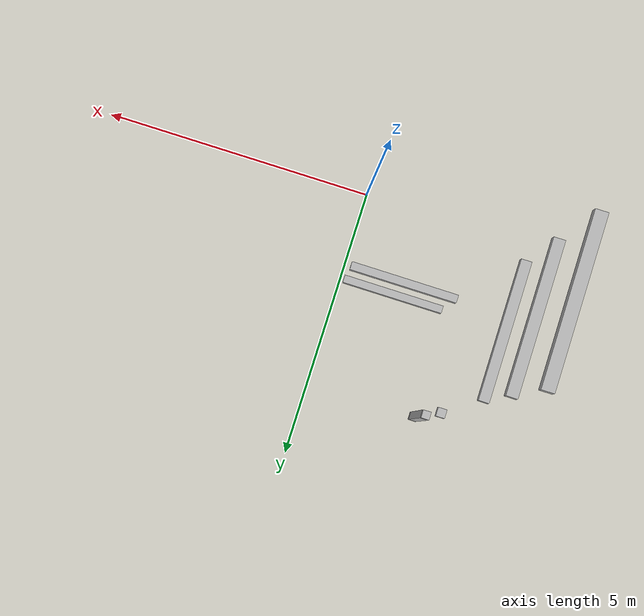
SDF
<sdf version="1.7">
 <world name="default">
  <model name="orthogonal_747_2.000.15_TS">
   <static>1</static>
   <link name="x_link_0_3_2">
    <inertial>
     <mass>1</mass>
     <inertia>
      <ixx>0.166667</ixx>
      <ixy>0</ixy>
      <ixz>0</ixz>
      <iyy>0.166667</iyy>
      <iyz>0</iyz>
      <izz>0.166667</izz>
     </inertia>
    </inertial>
    <pose>5.375 6.45 1.075 0 -0 0</pose>
    <visual name="visual_0">
     <laser_retro>526</laser_retro>
     <geometry><box><size>2 1e-06 0.15</size></box></geometry>
     <material>
      <script><name>Gazebo/Grey</name><uri>file://media/materials/scripts/gazebo.material</uri></script>
      <shader type="pixel"><normal_map>__default__</normal_map></shader>
      <ambient>0.678 0.498 0.659 1</ambient>
      <diffuse>0.7 0.7 0.7 1</diffuse>
      <specular>0.01 0.01 0.01 1</specular>
      <emissive>0 0 0 1</emissive>
     </material>
     <pose>0 -0.075 0 0 -0 0</pose>
     <transparency>1</transparency>
    </visual>
    <visual name="visual_1">
     <laser_retro>527</laser_retro>
     <geometry><box><size>2 1e-06 0.15</size></box></geometry>
     <material>
      <script><name>Gazebo/Grey</name><uri>file://media/materials/scripts/gazebo.material</uri></script>
      <shader type="pixel"><normal_map>__default__</normal_map></shader>
      <ambient>0.447 0.624 0.812 1</ambient>
      <diffuse>0.7 0.7 0.7 1</diffuse>
      <specular>0.01 0.01 0.01 1</specular>
      <emissive>0 0 0 1</emissive>
     </material>
     <pose>0 0.075 0 0 -0 0</pose>
     <transparency>1</transparency>
    </visual>
    <visual name="visual_2">
     <laser_retro>528</laser_retro>
     <geometry><box><size>2 0.15 1e-06</size></box></geometry>
     <material>
      <script><name>Gazebo/Grey</name><uri>file://media/materials/scripts/gazebo.material</uri></script>
      <shader type="pixel"><normal_map>__default__</normal_map></shader>
      <ambient>0.988 0.686 0.243 1</ambient>
      <diffuse>0.7 0.7 0.7 1</diffuse>
      <specular>0.01 0.01 0.01 1</specular>
      <emissive>0 0 0 1</emissive>
     </material>
     <pose>0 0 -0.075 0 -0 0</pose>
     <transparency>1</transparency>
    </visual>
    <visual name="visual_3">
     <laser_retro>529</laser_retro>
     <geometry><box><size>1e-06 0.15 0.15</size></box></geometry>
     <material>
      <script><name>Gazebo/Grey</name><uri>file://media/materials/scripts/gazebo.material</uri></script>
      <shader type="pixel"><normal_map>__default__</normal_map></shader>
      <ambient>0.988 0.914 0.31 1</ambient>
      <diffuse>0.7 0.7 0.7 1</diffuse>
      <specular>0.01 0.01 0.01 1</specular>
      <emissive>0 0 0 1</emissive>
     </material>
     <pose>1 0 0 0 -0 0</pose>
     <transparency>1</transparency>
    </visual>
    <visual name="visual_4">
     <laser_retro>530</laser_retro>
     <geometry><box><size>2 0.15 1e-06</size></box></geometry>
     <material>
      <script><name>Gazebo/Grey</name><uri>file://media/materials/scripts/gazebo.material</uri></script>
      <shader type="pixel"><normal_map>__default__</normal_map></shader>
      <ambient>0.937 0.161 0.161 1</ambient>
      <diffuse>0.7 0.7 0.7 1</diffuse>
      <specular>0.01 0.01 0.01 1</specular>
      <emissive>0 0 0 1</emissive>
     </material>
     <pose>0 0 0.075 0 -0 0</pose>
     <transparency>1</transparency>
    </visual>
    <visual name="visual_5">
     <laser_retro>531</laser_retro>
     <geometry><box><size>1e-06 0.15 0.15</size></box></geometry>
     <material>
      <script><name>Gazebo/Grey</name><uri>file://media/materials/scripts/gazebo.material</uri></script>
      <shader type="pixel"><normal_map>__default__</normal_map></shader>
      <ambient>0.541 0.886 0.204 1</ambient>
      <diffuse>0.7 0.7 0.7 1</diffuse>
      <specular>0.01 0.01 0.01 1</specular>
      <emissive>0 0 0 1</emissive>
     </material>
     <pose>-1 0 0 0 -0 0</pose>
     <transparency>1</transparency>
    </visual>
    <visual name="visual_texture">
     <geometry><box><size>1.9998 0.149985 0.149985</size></box></geometry>
     <material>
      <script>
       <uri>model://BASE_MODELS/simple_block_v2_textured/materials/scripts</uri>
       <uri>model://BASE_MODELS/simple_block_v2_textured/materials/textures</uri>
       <name>metal</name>
      </script>
     </material>
     <laser_retro>532</laser_retro>
    </visual>
    <collision name="collision">
     <geometry><box><size>2 0.15 0.15</size></box></geometry>
     <surface>
      <friction>
       <ode><mu>1</mu><mu2>1</mu2><fdir1>0 0 0</fdir1><slip1>0</slip1><slip2>0</slip2></ode>
       <torsional>
        <coefficient>1</coefficient>
        <patch_radius>0</patch_radius>
        <surface_radius>0</surface_radius>
        <use_patch_radius>1</use_patch_radius>
        <ode><slip>0</slip></ode>
       </torsional>
      </friction>
      <bounce><restitution_coefficient>0</restitution_coefficient><threshold>1e+06</threshold></bounce>
      <contact>
       <collide_without_contact>0</collide_without_contact>
       <collide_without_contact_bitmask>1</collide_without_contact_bitmask>
       <collide_bitmask>1</collide_bitmask>
       <ode>
        <soft_cfm>0</soft_cfm>
        <soft_erp>0.2</soft_erp>
        <kp>1e+13</kp>
        <kd>1</kd>
        <max_vel>0.01</max_vel>
        <min_depth>0</min_depth>
       </ode>
       <bullet>
        <split_impulse>1</split_impulse>
        <split_impulse_penetration_threshold>-0.01</split_impulse_penetration_threshold>
        <soft_cfm>0</soft_cfm>
        <soft_erp>0.2</soft_erp>
        <kp>1e+13</kp>
        <kd>1</kd>
       </bullet>
      </contact>
     </surface>
    </collision>
   </link>
   <link name="u_link_0_4_2">
    <inertial>
     <mass>1</mass>
     <inertia>
      <ixx>0.166667</ixx>
      <ixy>0</ixy>
      <ixz>0</ixz>
      <iyy>0.166667</iyy>
      <iyz>0</iyz>
      <izz>0.166667</izz>
     </inertia>
    </inertial>
    <pose>4.3 8.6 1.075 0 -0 0</pose>
    <visual name="visual_0">
     <laser_retro>680</laser_retro>
     <geometry><box><size>0.15 1e-06 0.15</size></box></geometry>
     <material>
      <script><name>Gazebo/Grey</name><uri>file://media/materials/scripts/gazebo.material</uri></script>
      <shader type="pixel"><normal_map>__default__</normal_map></shader>
      <ambient>0.678 0.498 0.659 1</ambient>
      <diffuse>0.7 0.7 0.7 1</diffuse>
      <specular>0.01 0.01 0.01 1</specular>
      <emissive>0 0 0 1</emissive>
     </material>
     <pose>0 -0.075 0 0 -0 0</pose>
     <transparency>1</transparency>
    </visual>
    <visual name="visual_1">
     <laser_retro>681</laser_retro>
     <geometry><box><size>0.15 1e-06 0.15</size></box></geometry>
     <material>
      <script><name>Gazebo/Grey</name><uri>file://media/materials/scripts/gazebo.material</uri></script>
      <shader type="pixel"><normal_map>__default__</normal_map></shader>
      <ambient>0.447 0.624 0.812 1</ambient>
      <diffuse>0.7 0.7 0.7 1</diffuse>
      <specular>0.01 0.01 0.01 1</specular>
      <emissive>0 0 0 1</emissive>
     </material>
     <pose>0 0.075 0 0 -0 0</pose>
     <transparency>1</transparency>
    </visual>
    <visual name="visual_2">
     <laser_retro>682</laser_retro>
     <geometry><box><size>0.15 0.15 1e-06</size></box></geometry>
     <material>
      <script><name>Gazebo/Grey</name><uri>file://media/materials/scripts/gazebo.material</uri></script>
      <shader type="pixel"><normal_map>__default__</normal_map></shader>
      <ambient>0.988 0.686 0.243 1</ambient>
      <diffuse>0.7 0.7 0.7 1</diffuse>
      <specular>0.01 0.01 0.01 1</specular>
      <emissive>0 0 0 1</emissive>
     </material>
     <pose>0 0 -0.075 0 -0 0</pose>
     <transparency>1</transparency>
    </visual>
    <visual name="visual_3">
     <laser_retro>683</laser_retro>
     <geometry><box><size>1e-06 0.15 0.15</size></box></geometry>
     <material>
      <script><name>Gazebo/Grey</name><uri>file://media/materials/scripts/gazebo.material</uri></script>
      <shader type="pixel"><normal_map>__default__</normal_map></shader>
      <ambient>0.988 0.914 0.31 1</ambient>
      <diffuse>0.7 0.7 0.7 1</diffuse>
      <specular>0.01 0.01 0.01 1</specular>
      <emissive>0 0 0 1</emissive>
     </material>
     <pose>0.075 0 0 0 -0 0</pose>
     <transparency>1</transparency>
    </visual>
    <visual name="visual_4">
     <laser_retro>684</laser_retro>
     <geometry><box><size>0.15 0.15 1e-06</size></box></geometry>
     <material>
      <script><name>Gazebo/Grey</name><uri>file://media/materials/scripts/gazebo.material</uri></script>
      <shader type="pixel"><normal_map>__default__</normal_map></shader>
      <ambient>0.937 0.161 0.161 1</ambient>
      <diffuse>0.7 0.7 0.7 1</diffuse>
      <specular>0.01 0.01 0.01 1</specular>
      <emissive>0 0 0 1</emissive>
     </material>
     <pose>0 0 0.075 0 -0 0</pose>
     <transparency>1</transparency>
    </visual>
    <visual name="visual_5">
     <laser_retro>685</laser_retro>
     <geometry><box><size>1e-06 0.15 0.15</size></box></geometry>
     <material>
      <script><name>Gazebo/Grey</name><uri>file://media/materials/scripts/gazebo.material</uri></script>
      <shader type="pixel"><normal_map>__default__</normal_map></shader>
      <ambient>0.541 0.886 0.204 1</ambient>
      <diffuse>0.7 0.7 0.7 1</diffuse>
      <specular>0.01 0.01 0.01 1</specular>
      <emissive>0 0 0 1</emissive>
     </material>
     <pose>-0.075 0 0 0 -0 0</pose>
     <transparency>1</transparency>
    </visual>
    <visual name="visual_texture">
     <geometry><box><size>0.149985 0.149985 0.149985</size></box></geometry>
     <material>
      <script>
       <uri>model://BASE_MODELS/simple_block_v2_textured/materials/scripts</uri>
       <uri>model://BASE_MODELS/simple_block_v2_textured/materials/textures</uri>
       <name>metal</name>
      </script>
     </material>
     <laser_retro>686</laser_retro>
    </visual>
    <collision name="collision">
     <geometry><box><size>0.15 0.15 0.15</size></box></geometry>
     <surface>
      <friction>
       <ode><mu>1</mu><mu2>1</mu2><fdir1>0 0 0</fdir1><slip1>0</slip1><slip2>0</slip2></ode>
       <torsional>
        <coefficient>1</coefficient>
        <patch_radius>0</patch_radius>
        <surface_radius>0</surface_radius>
        <use_patch_radius>1</use_patch_radius>
        <ode><slip>0</slip></ode>
       </torsional>
      </friction>
      <bounce><restitution_coefficient>0</restitution_coefficient><threshold>1e+06</threshold></bounce>
      <contact>
       <collide_without_contact>0</collide_without_contact>
       <collide_without_contact_bitmask>1</collide_without_contact_bitmask>
       <collide_bitmask>1</collide_bitmask>
       <ode>
        <soft_cfm>0</soft_cfm>
        <soft_erp>0.2</soft_erp>
        <kp>1e+13</kp>
        <kd>1</kd>
        <max_vel>0.01</max_vel>
        <min_depth>0</min_depth>
       </ode>
       <bullet>
        <split_impulse>1</split_impulse>
        <split_impulse_penetration_threshold>-0.01</split_impulse_penetration_threshold>
        <soft_cfm>0</soft_cfm>
        <soft_erp>0.2</soft_erp>
        <kp>1e+13</kp>
        <kd>1</kd>
       </bullet>
      </contact>
     </surface>
    </collision>
   </link>
   <link name="x_link_1_3_2">
    <inertial>
     <mass>1</mass>
     <inertia>
      <ixx>0.166667</ixx>
      <ixy>0</ixy>
      <ixz>0</ixz>
      <iyy>0.166667</iyy>
      <iyz>0</iyz>
      <izz>0.166667</izz>
     </inertia>
    </inertial>
    <pose>5.375 6.45 3.225 0 -0 0</pose>
    <visual name="visual_0">
     <laser_retro>1366</laser_retro>
     <geometry><box><size>2 1e-06 0.15</size></box></geometry>
     <material>
      <script><name>Gazebo/Grey</name><uri>file://media/materials/scripts/gazebo.material</uri></script>
      <shader type="pixel"><normal_map>__default__</normal_map></shader>
      <ambient>0.678 0.498 0.659 1</ambient>
      <diffuse>0.7 0.7 0.7 1</diffuse>
      <specular>0.01 0.01 0.01 1</specular>
      <emissive>0 0 0 1</emissive>
     </material>
     <pose>0 -0.075 0 0 -0 0</pose>
     <transparency>1</transparency>
    </visual>
    <visual name="visual_1">
     <laser_retro>1367</laser_retro>
     <geometry><box><size>2 1e-06 0.15</size></box></geometry>
     <material>
      <script><name>Gazebo/Grey</name><uri>file://media/materials/scripts/gazebo.material</uri></script>
      <shader type="pixel"><normal_map>__default__</normal_map></shader>
      <ambient>0.447 0.624 0.812 1</ambient>
      <diffuse>0.7 0.7 0.7 1</diffuse>
      <specular>0.01 0.01 0.01 1</specular>
      <emissive>0 0 0 1</emissive>
     </material>
     <pose>0 0.075 0 0 -0 0</pose>
     <transparency>1</transparency>
    </visual>
    <visual name="visual_2">
     <laser_retro>1368</laser_retro>
     <geometry><box><size>2 0.15 1e-06</size></box></geometry>
     <material>
      <script><name>Gazebo/Grey</name><uri>file://media/materials/scripts/gazebo.material</uri></script>
      <shader type="pixel"><normal_map>__default__</normal_map></shader>
      <ambient>0.988 0.686 0.243 1</ambient>
      <diffuse>0.7 0.7 0.7 1</diffuse>
      <specular>0.01 0.01 0.01 1</specular>
      <emissive>0 0 0 1</emissive>
     </material>
     <pose>0 0 -0.075 0 -0 0</pose>
     <transparency>1</transparency>
    </visual>
    <visual name="visual_3">
     <laser_retro>1369</laser_retro>
     <geometry><box><size>1e-06 0.15 0.15</size></box></geometry>
     <material>
      <script><name>Gazebo/Grey</name><uri>file://media/materials/scripts/gazebo.material</uri></script>
      <shader type="pixel"><normal_map>__default__</normal_map></shader>
      <ambient>0.988 0.914 0.31 1</ambient>
      <diffuse>0.7 0.7 0.7 1</diffuse>
      <specular>0.01 0.01 0.01 1</specular>
      <emissive>0 0 0 1</emissive>
     </material>
     <pose>1 0 0 0 -0 0</pose>
     <transparency>1</transparency>
    </visual>
    <visual name="visual_4">
     <laser_retro>1370</laser_retro>
     <geometry><box><size>2 0.15 1e-06</size></box></geometry>
     <material>
      <script><name>Gazebo/Grey</name><uri>file://media/materials/scripts/gazebo.material</uri></script>
      <shader type="pixel"><normal_map>__default__</normal_map></shader>
      <ambient>0.937 0.161 0.161 1</ambient>
      <diffuse>0.7 0.7 0.7 1</diffuse>
      <specular>0.01 0.01 0.01 1</specular>
      <emissive>0 0 0 1</emissive>
     </material>
     <pose>0 0 0.075 0 -0 0</pose>
     <transparency>1</transparency>
    </visual>
    <visual name="visual_5">
     <laser_retro>1371</laser_retro>
     <geometry><box><size>1e-06 0.15 0.15</size></box></geometry>
     <material>
      <script><name>Gazebo/Grey</name><uri>file://media/materials/scripts/gazebo.material</uri></script>
      <shader type="pixel"><normal_map>__default__</normal_map></shader>
      <ambient>0.541 0.886 0.204 1</ambient>
      <diffuse>0.7 0.7 0.7 1</diffuse>
      <specular>0.01 0.01 0.01 1</specular>
      <emissive>0 0 0 1</emissive>
     </material>
     <pose>-1 0 0 0 -0 0</pose>
     <transparency>1</transparency>
    </visual>
    <visual name="visual_texture">
     <geometry><box><size>1.9998 0.149985 0.149985</size></box></geometry>
     <material>
      <script>
       <uri>model://BASE_MODELS/simple_block_v2_textured/materials/scripts</uri>
       <uri>model://BASE_MODELS/simple_block_v2_textured/materials/textures</uri>
       <name>metal</name>
      </script>
     </material>
     <laser_retro>1372</laser_retro>
    </visual>
    <collision name="collision">
     <geometry><box><size>2 0.15 0.15</size></box></geometry>
     <surface>
      <friction>
       <ode><mu>1</mu><mu2>1</mu2><fdir1>0 0 0</fdir1><slip1>0</slip1><slip2>0</slip2></ode>
       <torsional>
        <coefficient>1</coefficient>
        <patch_radius>0</patch_radius>
        <surface_radius>0</surface_radius>
        <use_patch_radius>1</use_patch_radius>
        <ode><slip>0</slip></ode>
       </torsional>
      </friction>
      <bounce><restitution_coefficient>0</restitution_coefficient><threshold>1e+06</threshold></bounce>
      <contact>
       <collide_without_contact>0</collide_without_contact>
       <collide_without_contact_bitmask>1</collide_without_contact_bitmask>
       <collide_bitmask>1</collide_bitmask>
       <ode>
        <soft_cfm>0</soft_cfm>
        <soft_erp>0.2</soft_erp>
        <kp>1e+13</kp>
        <kd>1</kd>
        <max_vel>0.01</max_vel>
        <min_depth>0</min_depth>
       </ode>
       <bullet>
        <split_impulse>1</split_impulse>
        <split_impulse_penetration_threshold>-0.01</split_impulse_penetration_threshold>
        <soft_cfm>0</soft_cfm>
        <soft_erp>0.2</soft_erp>
        <kp>1e+13</kp>
        <kd>1</kd>
       </bullet>
      </contact>
     </surface>
    </collision>
   </link>
   <link name="u_link_1_4_2">
    <inertial>
     <mass>1</mass>
     <inertia>
      <ixx>0.166667</ixx>
      <ixy>0</ixy>
      <ixz>0</ixz>
      <iyy>0.166667</iyy>
      <iyz>0</iyz>
      <izz>0.166667</izz>
     </inertia>
    </inertial>
    <pose>4.3 8.6 3.225 0 -0 0</pose>
    <visual name="visual_0">
     <laser_retro>1541</laser_retro>
     <geometry><box><size>0.15 1e-06 0.15</size></box></geometry>
     <material>
      <script><name>Gazebo/Grey</name><uri>file://media/materials/scripts/gazebo.material</uri></script>
      <shader type="pixel"><normal_map>__default__</normal_map></shader>
      <ambient>0.678 0.498 0.659 1</ambient>
      <diffuse>0.7 0.7 0.7 1</diffuse>
      <specular>0.01 0.01 0.01 1</specular>
      <emissive>0 0 0 1</emissive>
     </material>
     <pose>0 -0.075 0 0 -0 0</pose>
     <transparency>1</transparency>
    </visual>
    <visual name="visual_1">
     <laser_retro>1542</laser_retro>
     <geometry><box><size>0.15 1e-06 0.15</size></box></geometry>
     <material>
      <script><name>Gazebo/Grey</name><uri>file://media/materials/scripts/gazebo.material</uri></script>
      <shader type="pixel"><normal_map>__default__</normal_map></shader>
      <ambient>0.447 0.624 0.812 1</ambient>
      <diffuse>0.7 0.7 0.7 1</diffuse>
      <specular>0.01 0.01 0.01 1</specular>
      <emissive>0 0 0 1</emissive>
     </material>
     <pose>0 0.075 0 0 -0 0</pose>
     <transparency>1</transparency>
    </visual>
    <visual name="visual_2">
     <laser_retro>1543</laser_retro>
     <geometry><box><size>0.15 0.15 1e-06</size></box></geometry>
     <material>
      <script><name>Gazebo/Grey</name><uri>file://media/materials/scripts/gazebo.material</uri></script>
      <shader type="pixel"><normal_map>__default__</normal_map></shader>
      <ambient>0.988 0.686 0.243 1</ambient>
      <diffuse>0.7 0.7 0.7 1</diffuse>
      <specular>0.01 0.01 0.01 1</specular>
      <emissive>0 0 0 1</emissive>
     </material>
     <pose>0 0 -0.075 0 -0 0</pose>
     <transparency>1</transparency>
    </visual>
    <visual name="visual_3">
     <laser_retro>1544</laser_retro>
     <geometry><box><size>1e-06 0.15 0.15</size></box></geometry>
     <material>
      <script><name>Gazebo/Grey</name><uri>file://media/materials/scripts/gazebo.material</uri></script>
      <shader type="pixel"><normal_map>__default__</normal_map></shader>
      <ambient>0.988 0.914 0.31 1</ambient>
      <diffuse>0.7 0.7 0.7 1</diffuse>
      <specular>0.01 0.01 0.01 1</specular>
      <emissive>0 0 0 1</emissive>
     </material>
     <pose>0.075 0 0 0 -0 0</pose>
     <transparency>1</transparency>
    </visual>
    <visual name="visual_4">
     <laser_retro>1545</laser_retro>
     <geometry><box><size>0.15 0.15 1e-06</size></box></geometry>
     <material>
      <script><name>Gazebo/Grey</name><uri>file://media/materials/scripts/gazebo.material</uri></script>
      <shader type="pixel"><normal_map>__default__</normal_map></shader>
      <ambient>0.937 0.161 0.161 1</ambient>
      <diffuse>0.7 0.7 0.7 1</diffuse>
      <specular>0.01 0.01 0.01 1</specular>
      <emissive>0 0 0 1</emissive>
     </material>
     <pose>0 0 0.075 0 -0 0</pose>
     <transparency>1</transparency>
    </visual>
    <visual name="visual_5">
     <laser_retro>1546</laser_retro>
     <geometry><box><size>1e-06 0.15 0.15</size></box></geometry>
     <material>
      <script><name>Gazebo/Grey</name><uri>file://media/materials/scripts/gazebo.material</uri></script>
      <shader type="pixel"><normal_map>__default__</normal_map></shader>
      <ambient>0.541 0.886 0.204 1</ambient>
      <diffuse>0.7 0.7 0.7 1</diffuse>
      <specular>0.01 0.01 0.01 1</specular>
      <emissive>0 0 0 1</emissive>
     </material>
     <pose>-0.075 0 0 0 -0 0</pose>
     <transparency>1</transparency>
    </visual>
    <visual name="visual_texture">
     <geometry><box><size>0.149985 0.149985 0.149985</size></box></geometry>
     <material>
      <script>
       <uri>model://BASE_MODELS/simple_block_v2_textured/materials/scripts</uri>
       <uri>model://BASE_MODELS/simple_block_v2_textured/materials/textures</uri>
       <name>metal</name>
      </script>
     </material>
     <laser_retro>1547</laser_retro>
    </visual>
    <collision name="collision">
     <geometry><box><size>0.15 0.15 0.15</size></box></geometry>
     <surface>
      <friction>
       <ode><mu>1</mu><mu2>1</mu2><fdir1>0 0 0</fdir1><slip1>0</slip1><slip2>0</slip2></ode>
       <torsional>
        <coefficient>1</coefficient>
        <patch_radius>0</patch_radius>
        <surface_radius>0</surface_radius>
        <use_patch_radius>1</use_patch_radius>
        <ode><slip>0</slip></ode>
       </torsional>
      </friction>
      <bounce><restitution_coefficient>0</restitution_coefficient><threshold>1e+06</threshold></bounce>
      <contact>
       <collide_without_contact>0</collide_without_contact>
       <collide_without_contact_bitmask>1</collide_without_contact_bitmask>
       <collide_bitmask>1</collide_bitmask>
       <ode>
        <soft_cfm>0</soft_cfm>
        <soft_erp>0.2</soft_erp>
        <kp>1e+13</kp>
        <kd>1</kd>
        <max_vel>0.01</max_vel>
        <min_depth>0</min_depth>
       </ode>
       <bullet>
        <split_impulse>1</split_impulse>
        <split_impulse_penetration_threshold>-0.01</split_impulse_penetration_threshold>
        <soft_cfm>0</soft_cfm>
        <soft_erp>0.2</soft_erp>
        <kp>1e+13</kp>
        <kd>1</kd>
       </bullet>
      </contact>
     </surface>
    </collision>
   </link>
   <link name="z_link_1_4_2">
    <inertial>
     <mass>1</mass>
     <inertia>
      <ixx>0.166667</ixx>
      <ixy>0</ixy>
      <ixz>0</ixz>
      <iyy>0.166667</iyy>
      <iyz>0</iyz>
      <izz>0.166667</izz>
     </inertia>
    </inertial>
    <pose>4.3 8.6 2.15 0 -0 0</pose>
    <visual name="visual_0">
     <laser_retro>1548</laser_retro>
     <geometry><box><size>0.15 1e-06 2</size></box></geometry>
     <material>
      <script><name>Gazebo/Grey</name><uri>file://media/materials/scripts/gazebo.material</uri></script>
      <shader type="pixel"><normal_map>__default__</normal_map></shader>
      <ambient>0.678 0.498 0.659 1</ambient>
      <diffuse>0.7 0.7 0.7 1</diffuse>
      <specular>0.01 0.01 0.01 1</specular>
      <emissive>0 0 0 1</emissive>
     </material>
     <pose>0 -0.075 0 0 -0 0</pose>
     <transparency>1</transparency>
    </visual>
    <visual name="visual_1">
     <laser_retro>1549</laser_retro>
     <geometry><box><size>0.15 1e-06 2</size></box></geometry>
     <material>
      <script><name>Gazebo/Grey</name><uri>file://media/materials/scripts/gazebo.material</uri></script>
      <shader type="pixel"><normal_map>__default__</normal_map></shader>
      <ambient>0.447 0.624 0.812 1</ambient>
      <diffuse>0.7 0.7 0.7 1</diffuse>
      <specular>0.01 0.01 0.01 1</specular>
      <emissive>0 0 0 1</emissive>
     </material>
     <pose>0 0.075 0 0 -0 0</pose>
     <transparency>1</transparency>
    </visual>
    <visual name="visual_2">
     <laser_retro>1550</laser_retro>
     <geometry><box><size>0.15 0.15 1e-06</size></box></geometry>
     <material>
      <script><name>Gazebo/Grey</name><uri>file://media/materials/scripts/gazebo.material</uri></script>
      <shader type="pixel"><normal_map>__default__</normal_map></shader>
      <ambient>0.988 0.686 0.243 1</ambient>
      <diffuse>0.7 0.7 0.7 1</diffuse>
      <specular>0.01 0.01 0.01 1</specular>
      <emissive>0 0 0 1</emissive>
     </material>
     <pose>0 0 -1 0 -0 0</pose>
     <transparency>1</transparency>
    </visual>
    <visual name="visual_3">
     <laser_retro>1551</laser_retro>
     <geometry><box><size>1e-06 0.15 2</size></box></geometry>
     <material>
      <script><name>Gazebo/Grey</name><uri>file://media/materials/scripts/gazebo.material</uri></script>
      <shader type="pixel"><normal_map>__default__</normal_map></shader>
      <ambient>0.988 0.914 0.31 1</ambient>
      <diffuse>0.7 0.7 0.7 1</diffuse>
      <specular>0.01 0.01 0.01 1</specular>
      <emissive>0 0 0 1</emissive>
     </material>
     <pose>0.075 0 0 0 -0 0</pose>
     <transparency>1</transparency>
    </visual>
    <visual name="visual_4">
     <laser_retro>1552</laser_retro>
     <geometry><box><size>0.15 0.15 1e-06</size></box></geometry>
     <material>
      <script><name>Gazebo/Grey</name><uri>file://media/materials/scripts/gazebo.material</uri></script>
      <shader type="pixel"><normal_map>__default__</normal_map></shader>
      <ambient>0.937 0.161 0.161 1</ambient>
      <diffuse>0.7 0.7 0.7 1</diffuse>
      <specular>0.01 0.01 0.01 1</specular>
      <emissive>0 0 0 1</emissive>
     </material>
     <pose>0 0 1 0 -0 0</pose>
     <transparency>1</transparency>
    </visual>
    <visual name="visual_5">
     <laser_retro>1553</laser_retro>
     <geometry><box><size>1e-06 0.15 2</size></box></geometry>
     <material>
      <script><name>Gazebo/Grey</name><uri>file://media/materials/scripts/gazebo.material</uri></script>
      <shader type="pixel"><normal_map>__default__</normal_map></shader>
      <ambient>0.541 0.886 0.204 1</ambient>
      <diffuse>0.7 0.7 0.7 1</diffuse>
      <specular>0.01 0.01 0.01 1</specular>
      <emissive>0 0 0 1</emissive>
     </material>
     <pose>-0.075 0 0 0 -0 0</pose>
     <transparency>1</transparency>
    </visual>
    <visual name="visual_texture">
     <geometry><box><size>0.149985 0.149985 1.9998</size></box></geometry>
     <material>
      <script>
       <uri>model://BASE_MODELS/simple_block_v2_textured/materials/scripts</uri>
       <uri>model://BASE_MODELS/simple_block_v2_textured/materials/textures</uri>
       <name>metal</name>
      </script>
     </material>
     <laser_retro>1554</laser_retro>
    </visual>
    <collision name="collision">
     <geometry><box><size>0.15 0.15 2</size></box></geometry>
     <surface>
      <friction>
       <ode><mu>1</mu><mu2>1</mu2><fdir1>0 0 0</fdir1><slip1>0</slip1><slip2>0</slip2></ode>
       <torsional>
        <coefficient>1</coefficient>
        <patch_radius>0</patch_radius>
        <surface_radius>0</surface_radius>
        <use_patch_radius>1</use_patch_radius>
        <ode><slip>0</slip></ode>
       </torsional>
      </friction>
      <bounce><restitution_coefficient>0</restitution_coefficient><threshold>1e+06</threshold></bounce>
      <contact>
       <collide_without_contact>0</collide_without_contact>
       <collide_without_contact_bitmask>1</collide_without_contact_bitmask>
       <collide_bitmask>1</collide_bitmask>
       <ode>
        <soft_cfm>0</soft_cfm>
        <soft_erp>0.2</soft_erp>
        <kp>1e+13</kp>
        <kd>1</kd>
        <max_vel>0.01</max_vel>
        <min_depth>0</min_depth>
       </ode>
       <bullet>
        <split_impulse>1</split_impulse>
        <split_impulse_penetration_threshold>-0.01</split_impulse_penetration_threshold>
        <soft_cfm>0</soft_cfm>
        <soft_erp>0.2</soft_erp>
        <kp>1e+13</kp>
        <kd>1</kd>
       </bullet>
      </contact>
     </surface>
    </collision>
   </link>
   <link name="u_link_2_4_2">
    <inertial>
     <mass>1</mass>
     <inertia>
      <ixx>0.166667</ixx>
      <ixy>0</ixy>
      <ixz>0</ixz>
      <iyy>0.166667</iyy>
      <iyz>0</iyz>
      <izz>0.166667</izz>
     </inertia>
    </inertial>
    <pose>4.3 8.6 5.375 0 -0 0</pose>
    <visual name="visual_0">
     <laser_retro>2444</laser_retro>
     <geometry><box><size>0.15 1e-06 0.15</size></box></geometry>
     <material>
      <script><name>Gazebo/Grey</name><uri>file://media/materials/scripts/gazebo.material</uri></script>
      <shader type="pixel"><normal_map>__default__</normal_map></shader>
      <ambient>0.678 0.498 0.659 1</ambient>
      <diffuse>0.7 0.7 0.7 1</diffuse>
      <specular>0.01 0.01 0.01 1</specular>
      <emissive>0 0 0 1</emissive>
     </material>
     <pose>0 -0.075 0 0 -0 0</pose>
     <transparency>1</transparency>
    </visual>
    <visual name="visual_1">
     <laser_retro>2445</laser_retro>
     <geometry><box><size>0.15 1e-06 0.15</size></box></geometry>
     <material>
      <script><name>Gazebo/Grey</name><uri>file://media/materials/scripts/gazebo.material</uri></script>
      <shader type="pixel"><normal_map>__default__</normal_map></shader>
      <ambient>0.447 0.624 0.812 1</ambient>
      <diffuse>0.7 0.7 0.7 1</diffuse>
      <specular>0.01 0.01 0.01 1</specular>
      <emissive>0 0 0 1</emissive>
     </material>
     <pose>0 0.075 0 0 -0 0</pose>
     <transparency>1</transparency>
    </visual>
    <visual name="visual_2">
     <laser_retro>2446</laser_retro>
     <geometry><box><size>0.15 0.15 1e-06</size></box></geometry>
     <material>
      <script><name>Gazebo/Grey</name><uri>file://media/materials/scripts/gazebo.material</uri></script>
      <shader type="pixel"><normal_map>__default__</normal_map></shader>
      <ambient>0.988 0.686 0.243 1</ambient>
      <diffuse>0.7 0.7 0.7 1</diffuse>
      <specular>0.01 0.01 0.01 1</specular>
      <emissive>0 0 0 1</emissive>
     </material>
     <pose>0 0 -0.075 0 -0 0</pose>
     <transparency>1</transparency>
    </visual>
    <visual name="visual_3">
     <laser_retro>2447</laser_retro>
     <geometry><box><size>1e-06 0.15 0.15</size></box></geometry>
     <material>
      <script><name>Gazebo/Grey</name><uri>file://media/materials/scripts/gazebo.material</uri></script>
      <shader type="pixel"><normal_map>__default__</normal_map></shader>
      <ambient>0.988 0.914 0.31 1</ambient>
      <diffuse>0.7 0.7 0.7 1</diffuse>
      <specular>0.01 0.01 0.01 1</specular>
      <emissive>0 0 0 1</emissive>
     </material>
     <pose>0.075 0 0 0 -0 0</pose>
     <transparency>1</transparency>
    </visual>
    <visual name="visual_4">
     <laser_retro>2448</laser_retro>
     <geometry><box><size>0.15 0.15 1e-06</size></box></geometry>
     <material>
      <script><name>Gazebo/Grey</name><uri>file://media/materials/scripts/gazebo.material</uri></script>
      <shader type="pixel"><normal_map>__default__</normal_map></shader>
      <ambient>0.937 0.161 0.161 1</ambient>
      <diffuse>0.7 0.7 0.7 1</diffuse>
      <specular>0.01 0.01 0.01 1</specular>
      <emissive>0 0 0 1</emissive>
     </material>
     <pose>0 0 0.075 0 -0 0</pose>
     <transparency>1</transparency>
    </visual>
    <visual name="visual_5">
     <laser_retro>2449</laser_retro>
     <geometry><box><size>1e-06 0.15 0.15</size></box></geometry>
     <material>
      <script><name>Gazebo/Grey</name><uri>file://media/materials/scripts/gazebo.material</uri></script>
      <shader type="pixel"><normal_map>__default__</normal_map></shader>
      <ambient>0.541 0.886 0.204 1</ambient>
      <diffuse>0.7 0.7 0.7 1</diffuse>
      <specular>0.01 0.01 0.01 1</specular>
      <emissive>0 0 0 1</emissive>
     </material>
     <pose>-0.075 0 0 0 -0 0</pose>
     <transparency>1</transparency>
    </visual>
    <visual name="visual_texture">
     <geometry><box><size>0.149985 0.149985 0.149985</size></box></geometry>
     <material>
      <script>
       <uri>model://BASE_MODELS/simple_block_v2_textured/materials/scripts</uri>
       <uri>model://BASE_MODELS/simple_block_v2_textured/materials/textures</uri>
       <name>metal</name>
      </script>
     </material>
     <laser_retro>2450</laser_retro>
    </visual>
    <collision name="collision">
     <geometry><box><size>0.15 0.15 0.15</size></box></geometry>
     <surface>
      <friction>
       <ode><mu>1</mu><mu2>1</mu2><fdir1>0 0 0</fdir1><slip1>0</slip1><slip2>0</slip2></ode>
       <torsional>
        <coefficient>1</coefficient>
        <patch_radius>0</patch_radius>
        <surface_radius>0</surface_radius>
        <use_patch_radius>1</use_patch_radius>
        <ode><slip>0</slip></ode>
       </torsional>
      </friction>
      <bounce><restitution_coefficient>0</restitution_coefficient><threshold>1e+06</threshold></bounce>
      <contact>
       <collide_without_contact>0</collide_without_contact>
       <collide_without_contact_bitmask>1</collide_without_contact_bitmask>
       <collide_bitmask>1</collide_bitmask>
       <ode>
        <soft_cfm>0</soft_cfm>
        <soft_erp>0.2</soft_erp>
        <kp>1e+13</kp>
        <kd>1</kd>
        <max_vel>0.01</max_vel>
        <min_depth>0</min_depth>
       </ode>
       <bullet>
        <split_impulse>1</split_impulse>
        <split_impulse_penetration_threshold>-0.01</split_impulse_penetration_threshold>
        <soft_cfm>0</soft_cfm>
        <soft_erp>0.2</soft_erp>
        <kp>1e+13</kp>
        <kd>1</kd>
       </bullet>
      </contact>
     </surface>
    </collision>
   </link>
   <link name="y_link_4_3_2">
    <inertial>
     <mass>1</mass>
     <inertia>
      <ixx>0.166667</ixx>
      <ixy>0</ixy>
      <ixz>0</ixz>
      <iyy>0.166667</iyy>
      <iyz>0</iyz>
      <izz>0.166667</izz>
     </inertia>
    </inertial>
    <pose>4.3 7.525 9.675 0 -0 0</pose>
    <visual name="visual_0">
     <laser_retro>4082</laser_retro>
     <geometry><box><size>0.15 1e-06 0.15</size></box></geometry>
     <material>
      <script><name>Gazebo/Grey</name><uri>file://media/materials/scripts/gazebo.material</uri></script>
      <shader type="pixel"><normal_map>__default__</normal_map></shader>
      <ambient>0.678 0.498 0.659 1</ambient>
      <diffuse>0.7 0.7 0.7 1</diffuse>
      <specular>0.01 0.01 0.01 1</specular>
      <emissive>0 0 0 1</emissive>
     </material>
     <pose>0 -1 0 0 -0 0</pose>
     <transparency>1</transparency>
    </visual>
    <visual name="visual_1">
     <laser_retro>4083</laser_retro>
     <geometry><box><size>0.15 1e-06 0.15</size></box></geometry>
     <material>
      <script><name>Gazebo/Grey</name><uri>file://media/materials/scripts/gazebo.material</uri></script>
      <shader type="pixel"><normal_map>__default__</normal_map></shader>
      <ambient>0.447 0.624 0.812 1</ambient>
      <diffuse>0.7 0.7 0.7 1</diffuse>
      <specular>0.01 0.01 0.01 1</specular>
      <emissive>0 0 0 1</emissive>
     </material>
     <pose>0 1 0 0 -0 0</pose>
     <transparency>1</transparency>
    </visual>
    <visual name="visual_2">
     <laser_retro>4084</laser_retro>
     <geometry><box><size>0.15 2 1e-06</size></box></geometry>
     <material>
      <script><name>Gazebo/Grey</name><uri>file://media/materials/scripts/gazebo.material</uri></script>
      <shader type="pixel"><normal_map>__default__</normal_map></shader>
      <ambient>0.988 0.686 0.243 1</ambient>
      <diffuse>0.7 0.7 0.7 1</diffuse>
      <specular>0.01 0.01 0.01 1</specular>
      <emissive>0 0 0 1</emissive>
     </material>
     <pose>0 0 -0.075 0 -0 0</pose>
     <transparency>1</transparency>
    </visual>
    <visual name="visual_3">
     <laser_retro>4085</laser_retro>
     <geometry><box><size>1e-06 2 0.15</size></box></geometry>
     <material>
      <script><name>Gazebo/Grey</name><uri>file://media/materials/scripts/gazebo.material</uri></script>
      <shader type="pixel"><normal_map>__default__</normal_map></shader>
      <ambient>0.988 0.914 0.31 1</ambient>
      <diffuse>0.7 0.7 0.7 1</diffuse>
      <specular>0.01 0.01 0.01 1</specular>
      <emissive>0 0 0 1</emissive>
     </material>
     <pose>0.075 0 0 0 -0 0</pose>
     <transparency>1</transparency>
    </visual>
    <visual name="visual_4">
     <laser_retro>4086</laser_retro>
     <geometry><box><size>0.15 2 1e-06</size></box></geometry>
     <material>
      <script><name>Gazebo/Grey</name><uri>file://media/materials/scripts/gazebo.material</uri></script>
      <shader type="pixel"><normal_map>__default__</normal_map></shader>
      <ambient>0.937 0.161 0.161 1</ambient>
      <diffuse>0.7 0.7 0.7 1</diffuse>
      <specular>0.01 0.01 0.01 1</specular>
      <emissive>0 0 0 1</emissive>
     </material>
     <pose>0 0 0.075 0 -0 0</pose>
     <transparency>1</transparency>
    </visual>
    <visual name="visual_5">
     <laser_retro>4087</laser_retro>
     <geometry><box><size>1e-06 2 0.15</size></box></geometry>
     <material>
      <script><name>Gazebo/Grey</name><uri>file://media/materials/scripts/gazebo.material</uri></script>
      <shader type="pixel"><normal_map>__default__</normal_map></shader>
      <ambient>0.541 0.886 0.204 1</ambient>
      <diffuse>0.7 0.7 0.7 1</diffuse>
      <specular>0.01 0.01 0.01 1</specular>
      <emissive>0 0 0 1</emissive>
     </material>
     <pose>-0.075 0 0 0 -0 0</pose>
     <transparency>1</transparency>
    </visual>
    <visual name="visual_texture">
     <geometry><box><size>0.149985 1.9998 0.149985</size></box></geometry>
     <material>
      <script>
       <uri>model://BASE_MODELS/simple_block_v2_textured/materials/scripts</uri>
       <uri>model://BASE_MODELS/simple_block_v2_textured/materials/textures</uri>
       <name>metal</name>
      </script>
     </material>
     <laser_retro>4088</laser_retro>
    </visual>
    <collision name="collision">
     <geometry><box><size>0.15 2 0.15</size></box></geometry>
     <surface>
      <friction>
       <ode><mu>1</mu><mu2>1</mu2><fdir1>0 0 0</fdir1><slip1>0</slip1><slip2>0</slip2></ode>
       <torsional>
        <coefficient>1</coefficient>
        <patch_radius>0</patch_radius>
        <surface_radius>0</surface_radius>
        <use_patch_radius>1</use_patch_radius>
        <ode><slip>0</slip></ode>
       </torsional>
      </friction>
      <bounce><restitution_coefficient>0</restitution_coefficient><threshold>1e+06</threshold></bounce>
      <contact>
       <collide_without_contact>0</collide_without_contact>
       <collide_without_contact_bitmask>1</collide_without_contact_bitmask>
       <collide_bitmask>1</collide_bitmask>
       <ode>
        <soft_cfm>0</soft_cfm>
        <soft_erp>0.2</soft_erp>
        <kp>1e+13</kp>
        <kd>1</kd>
        <max_vel>0.01</max_vel>
        <min_depth>0</min_depth>
       </ode>
       <bullet>
        <split_impulse>1</split_impulse>
        <split_impulse_penetration_threshold>-0.01</split_impulse_penetration_threshold>
        <soft_cfm>0</soft_cfm>
        <soft_erp>0.2</soft_erp>
        <kp>1e+13</kp>
        <kd>1</kd>
       </bullet>
      </contact>
     </surface>
    </collision>
   </link>
   <link name="y_link_5_3_2">
    <inertial>
     <mass>1</mass>
     <inertia>
      <ixx>0.166667</ixx>
      <ixy>0</ixy>
      <ixz>0</ixz>
      <iyy>0.166667</iyy>
      <iyz>0</iyz>
      <izz>0.166667</izz>
     </inertia>
    </inertial>
    <pose>4.3 7.525 11.825 0 -0 0</pose>
    <visual name="visual_0">
     <laser_retro>4985</laser_retro>
     <geometry><box><size>0.15 1e-06 0.15</size></box></geometry>
     <material>
      <script><name>Gazebo/Grey</name><uri>file://media/materials/scripts/gazebo.material</uri></script>
      <shader type="pixel"><normal_map>__default__</normal_map></shader>
      <ambient>0.678 0.498 0.659 1</ambient>
      <diffuse>0.7 0.7 0.7 1</diffuse>
      <specular>0.01 0.01 0.01 1</specular>
      <emissive>0 0 0 1</emissive>
     </material>
     <pose>0 -1 0 0 -0 0</pose>
     <transparency>1</transparency>
    </visual>
    <visual name="visual_1">
     <laser_retro>4986</laser_retro>
     <geometry><box><size>0.15 1e-06 0.15</size></box></geometry>
     <material>
      <script><name>Gazebo/Grey</name><uri>file://media/materials/scripts/gazebo.material</uri></script>
      <shader type="pixel"><normal_map>__default__</normal_map></shader>
      <ambient>0.447 0.624 0.812 1</ambient>
      <diffuse>0.7 0.7 0.7 1</diffuse>
      <specular>0.01 0.01 0.01 1</specular>
      <emissive>0 0 0 1</emissive>
     </material>
     <pose>0 1 0 0 -0 0</pose>
     <transparency>1</transparency>
    </visual>
    <visual name="visual_2">
     <laser_retro>4987</laser_retro>
     <geometry><box><size>0.15 2 1e-06</size></box></geometry>
     <material>
      <script><name>Gazebo/Grey</name><uri>file://media/materials/scripts/gazebo.material</uri></script>
      <shader type="pixel"><normal_map>__default__</normal_map></shader>
      <ambient>0.988 0.686 0.243 1</ambient>
      <diffuse>0.7 0.7 0.7 1</diffuse>
      <specular>0.01 0.01 0.01 1</specular>
      <emissive>0 0 0 1</emissive>
     </material>
     <pose>0 0 -0.075 0 -0 0</pose>
     <transparency>1</transparency>
    </visual>
    <visual name="visual_3">
     <laser_retro>4988</laser_retro>
     <geometry><box><size>1e-06 2 0.15</size></box></geometry>
     <material>
      <script><name>Gazebo/Grey</name><uri>file://media/materials/scripts/gazebo.material</uri></script>
      <shader type="pixel"><normal_map>__default__</normal_map></shader>
      <ambient>0.988 0.914 0.31 1</ambient>
      <diffuse>0.7 0.7 0.7 1</diffuse>
      <specular>0.01 0.01 0.01 1</specular>
      <emissive>0 0 0 1</emissive>
     </material>
     <pose>0.075 0 0 0 -0 0</pose>
     <transparency>1</transparency>
    </visual>
    <visual name="visual_4">
     <laser_retro>4989</laser_retro>
     <geometry><box><size>0.15 2 1e-06</size></box></geometry>
     <material>
      <script><name>Gazebo/Grey</name><uri>file://media/materials/scripts/gazebo.material</uri></script>
      <shader type="pixel"><normal_map>__default__</normal_map></shader>
      <ambient>0.937 0.161 0.161 1</ambient>
      <diffuse>0.7 0.7 0.7 1</diffuse>
      <specular>0.01 0.01 0.01 1</specular>
      <emissive>0 0 0 1</emissive>
     </material>
     <pose>0 0 0.075 0 -0 0</pose>
     <transparency>1</transparency>
    </visual>
    <visual name="visual_5">
     <laser_retro>4990</laser_retro>
     <geometry><box><size>1e-06 2 0.15</size></box></geometry>
     <material>
      <script><name>Gazebo/Grey</name><uri>file://media/materials/scripts/gazebo.material</uri></script>
      <shader type="pixel"><normal_map>__default__</normal_map></shader>
      <ambient>0.541 0.886 0.204 1</ambient>
      <diffuse>0.7 0.7 0.7 1</diffuse>
      <specular>0.01 0.01 0.01 1</specular>
      <emissive>0 0 0 1</emissive>
     </material>
     <pose>-0.075 0 0 0 -0 0</pose>
     <transparency>1</transparency>
    </visual>
    <visual name="visual_texture">
     <geometry><box><size>0.149985 1.9998 0.149985</size></box></geometry>
     <material>
      <script>
       <uri>model://BASE_MODELS/simple_block_v2_textured/materials/scripts</uri>
       <uri>model://BASE_MODELS/simple_block_v2_textured/materials/textures</uri>
       <name>metal</name>
      </script>
     </material>
     <laser_retro>4991</laser_retro>
    </visual>
    <collision name="collision">
     <geometry><box><size>0.15 2 0.15</size></box></geometry>
     <surface>
      <friction>
       <ode><mu>1</mu><mu2>1</mu2><fdir1>0 0 0</fdir1><slip1>0</slip1><slip2>0</slip2></ode>
       <torsional>
        <coefficient>1</coefficient>
        <patch_radius>0</patch_radius>
        <surface_radius>0</surface_radius>
        <use_patch_radius>1</use_patch_radius>
        <ode><slip>0</slip></ode>
       </torsional>
      </friction>
      <bounce><restitution_coefficient>0</restitution_coefficient><threshold>1e+06</threshold></bounce>
      <contact>
       <collide_without_contact>0</collide_without_contact>
       <collide_without_contact_bitmask>1</collide_without_contact_bitmask>
       <collide_bitmask>1</collide_bitmask>
       <ode>
        <soft_cfm>0</soft_cfm>
        <soft_erp>0.2</soft_erp>
        <kp>1e+13</kp>
        <kd>1</kd>
        <max_vel>0.01</max_vel>
        <min_depth>0</min_depth>
       </ode>
       <bullet>
        <split_impulse>1</split_impulse>
        <split_impulse_penetration_threshold>-0.01</split_impulse_penetration_threshold>
        <soft_cfm>0</soft_cfm>
        <soft_erp>0.2</soft_erp>
        <kp>1e+13</kp>
        <kd>1</kd>
       </bullet>
      </contact>
     </surface>
    </collision>
   </link>
   <link name="y_link_6_3_2">
    <inertial>
     <mass>1</mass>
     <inertia>
      <ixx>0.166667</ixx>
      <ixy>0</ixy>
      <ixz>0</ixz>
      <iyy>0.166667</iyy>
      <iyz>0</iyz>
      <izz>0.166667</izz>
     </inertia>
    </inertial>
    <pose>4.3 7.525 13.975 0 -0 0</pose>
    <visual name="visual_0">
     <laser_retro>5979</laser_retro>
     <geometry><box><size>0.15 1e-06 0.15</size></box></geometry>
     <material>
      <script><name>Gazebo/Grey</name><uri>file://media/materials/scripts/gazebo.material</uri></script>
      <shader type="pixel"><normal_map>__default__</normal_map></shader>
      <ambient>0.678 0.498 0.659 1</ambient>
      <diffuse>0.7 0.7 0.7 1</diffuse>
      <specular>0.01 0.01 0.01 1</specular>
      <emissive>0 0 0 1</emissive>
     </material>
     <pose>0 -1 0 0 -0 0</pose>
     <transparency>1</transparency>
    </visual>
    <visual name="visual_1">
     <laser_retro>5980</laser_retro>
     <geometry><box><size>0.15 1e-06 0.15</size></box></geometry>
     <material>
      <script><name>Gazebo/Grey</name><uri>file://media/materials/scripts/gazebo.material</uri></script>
      <shader type="pixel"><normal_map>__default__</normal_map></shader>
      <ambient>0.447 0.624 0.812 1</ambient>
      <diffuse>0.7 0.7 0.7 1</diffuse>
      <specular>0.01 0.01 0.01 1</specular>
      <emissive>0 0 0 1</emissive>
     </material>
     <pose>0 1 0 0 -0 0</pose>
     <transparency>1</transparency>
    </visual>
    <visual name="visual_2">
     <laser_retro>5981</laser_retro>
     <geometry><box><size>0.15 2 1e-06</size></box></geometry>
     <material>
      <script><name>Gazebo/Grey</name><uri>file://media/materials/scripts/gazebo.material</uri></script>
      <shader type="pixel"><normal_map>__default__</normal_map></shader>
      <ambient>0.988 0.686 0.243 1</ambient>
      <diffuse>0.7 0.7 0.7 1</diffuse>
      <specular>0.01 0.01 0.01 1</specular>
      <emissive>0 0 0 1</emissive>
     </material>
     <pose>0 0 -0.075 0 -0 0</pose>
     <transparency>1</transparency>
    </visual>
    <visual name="visual_3">
     <laser_retro>5982</laser_retro>
     <geometry><box><size>1e-06 2 0.15</size></box></geometry>
     <material>
      <script><name>Gazebo/Grey</name><uri>file://media/materials/scripts/gazebo.material</uri></script>
      <shader type="pixel"><normal_map>__default__</normal_map></shader>
      <ambient>0.988 0.914 0.31 1</ambient>
      <diffuse>0.7 0.7 0.7 1</diffuse>
      <specular>0.01 0.01 0.01 1</specular>
      <emissive>0 0 0 1</emissive>
     </material>
     <pose>0.075 0 0 0 -0 0</pose>
     <transparency>1</transparency>
    </visual>
    <visual name="visual_4">
     <laser_retro>5983</laser_retro>
     <geometry><box><size>0.15 2 1e-06</size></box></geometry>
     <material>
      <script><name>Gazebo/Grey</name><uri>file://media/materials/scripts/gazebo.material</uri></script>
      <shader type="pixel"><normal_map>__default__</normal_map></shader>
      <ambient>0.937 0.161 0.161 1</ambient>
      <diffuse>0.7 0.7 0.7 1</diffuse>
      <specular>0.01 0.01 0.01 1</specular>
      <emissive>0 0 0 1</emissive>
     </material>
     <pose>0 0 0.075 0 -0 0</pose>
     <transparency>1</transparency>
    </visual>
    <visual name="visual_5">
     <laser_retro>5984</laser_retro>
     <geometry><box><size>1e-06 2 0.15</size></box></geometry>
     <material>
      <script><name>Gazebo/Grey</name><uri>file://media/materials/scripts/gazebo.material</uri></script>
      <shader type="pixel"><normal_map>__default__</normal_map></shader>
      <ambient>0.541 0.886 0.204 1</ambient>
      <diffuse>0.7 0.7 0.7 1</diffuse>
      <specular>0.01 0.01 0.01 1</specular>
      <emissive>0 0 0 1</emissive>
     </material>
     <pose>-0.075 0 0 0 -0 0</pose>
     <transparency>1</transparency>
    </visual>
    <visual name="visual_texture">
     <geometry><box><size>0.149985 1.9998 0.149985</size></box></geometry>
     <material>
      <script>
       <uri>model://BASE_MODELS/simple_block_v2_textured/materials/scripts</uri>
       <uri>model://BASE_MODELS/simple_block_v2_textured/materials/textures</uri>
       <name>metal</name>
      </script>
     </material>
     <laser_retro>5985</laser_retro>
    </visual>
    <collision name="collision">
     <geometry><box><size>0.15 2 0.15</size></box></geometry>
     <surface>
      <friction>
       <ode><mu>1</mu><mu2>1</mu2><fdir1>0 0 0</fdir1><slip1>0</slip1><slip2>0</slip2></ode>
       <torsional>
        <coefficient>1</coefficient>
        <patch_radius>0</patch_radius>
        <surface_radius>0</surface_radius>
        <use_patch_radius>1</use_patch_radius>
        <ode><slip>0</slip></ode>
       </torsional>
      </friction>
      <bounce><restitution_coefficient>0</restitution_coefficient><threshold>1e+06</threshold></bounce>
      <contact>
       <collide_without_contact>0</collide_without_contact>
       <collide_without_contact_bitmask>1</collide_without_contact_bitmask>
       <collide_bitmask>1</collide_bitmask>
       <ode>
        <soft_cfm>0</soft_cfm>
        <soft_erp>0.2</soft_erp>
        <kp>1e+13</kp>
        <kd>1</kd>
        <max_vel>0.01</max_vel>
        <min_depth>0</min_depth>
       </ode>
       <bullet>
        <split_impulse>1</split_impulse>
        <split_impulse_penetration_threshold>-0.01</split_impulse_penetration_threshold>
        <soft_cfm>0</soft_cfm>
        <soft_erp>0.2</soft_erp>
        <kp>1e+13</kp>
        <kd>1</kd>
       </bullet>
      </contact>
     </surface>
    </collision>
   </link>
   <pose>-6.47624 -5 -2.5 0 -0 0</pose>
  </model>
 </world>
</sdf>
